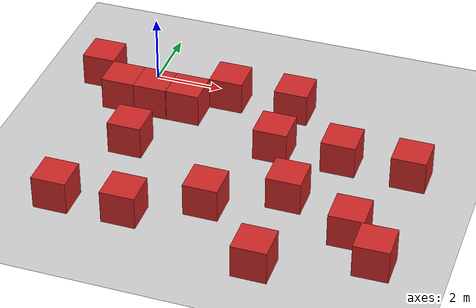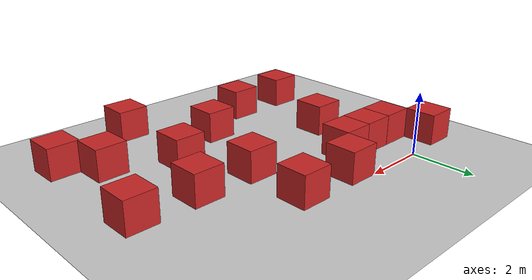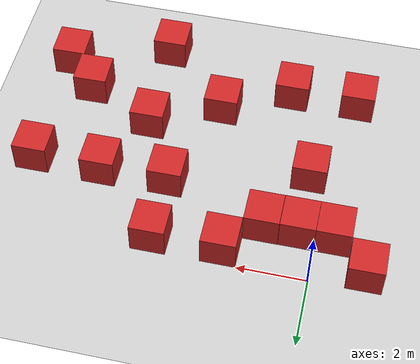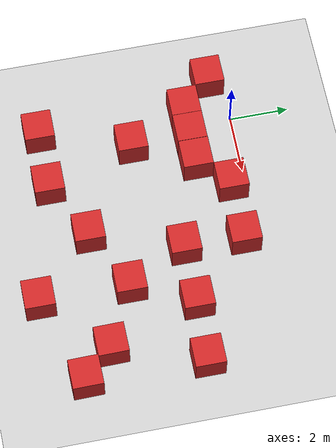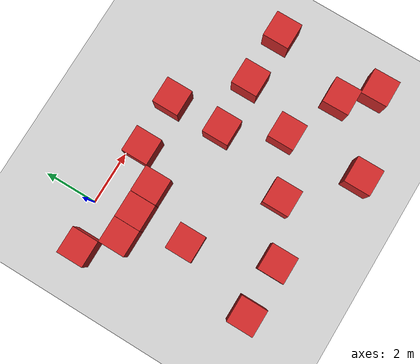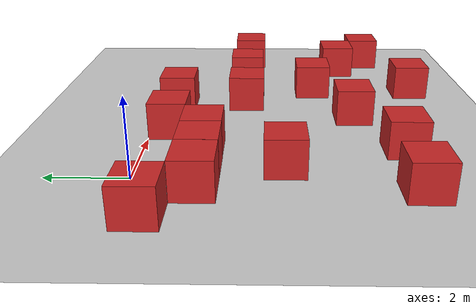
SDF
<sdf version="1.7">
 <world name="default">
  <model name="ground_plane">
   <static>1</static>
   <link name="link">
    <collision name="collision">
     <geometry><plane><normal>0 0 1</normal><size>100 100</size></plane></geometry>
     <surface><friction><ode><mu>100</mu><mu2>50</mu2></ode></friction></surface>
    </collision>
    <visual name="visual">
     <cast_shadows>0</cast_shadows>
     <geometry><plane><normal>0 0 1</normal><size>100 100</size></plane></geometry>
     <material>
      <script><uri>file://media/materials/scripts/gazebo.material</uri><name>Gazebo/Grey</name></script>
     </material>
    </visual>
   </link>
  </model>
  <model name="unit_box_red_0">
   <link name="link">
    <inertial>
     <mass>1</mass>
     <inertia>
      <ixx>0.166667</ixx>
      <ixy>0</ixy>
      <ixz>0</ixz>
      <iyy>0.166667</iyy>
      <iyz>0</iyz>
      <izz>0.166667</izz>
     </inertia>
    </inertial>
    <visual name="visual">
     <geometry><box><size>1 1 1</size></box></geometry>
     <material>
      <script><name>Gazebo/Red</name><uri>file://media/materials/scripts/gazebo.material</uri></script>
      <shader type="pixel"><normal_map>__default__</normal_map></shader>
      <ambient>1 0 0 1</ambient>
      <diffuse>1 0 0 1</diffuse>
      <specular>1 0 0 1</specular>
      <emissive>1 0 0 1</emissive>
     </material>
    </visual>
    <collision name="collision">
     <geometry><box><size>1 1 1</size></box></geometry>
     <surface>
      <friction>
       <ode><mu>1</mu><mu2>1</mu2><fdir1>0 0 0</fdir1><slip1>0</slip1><slip2>0</slip2></ode>
       <torsional>
        <coefficient>1</coefficient>
        <patch_radius>0</patch_radius>
        <surface_radius>0</surface_radius>
        <use_patch_radius>1</use_patch_radius>
        <ode><slip>0</slip></ode>
       </torsional>
      </friction>
      <bounce><restitution_coefficient>0</restitution_coefficient><threshold>1e+06</threshold></bounce>
      <contact>
       <collide_without_contact>0</collide_without_contact>
       <collide_without_contact_bitmask>1</collide_without_contact_bitmask>
       <collide_bitmask>1</collide_bitmask>
       <ode>
        <soft_cfm>0</soft_cfm>
        <soft_erp>0.2</soft_erp>
        <kp>1e+13</kp>
        <kd>1</kd>
        <max_vel>0.01</max_vel>
        <min_depth>0</min_depth>
       </ode>
       <bullet>
        <split_impulse>1</split_impulse>
        <split_impulse_penetration_threshold>-0.01</split_impulse_penetration_threshold>
        <soft_cfm>0</soft_cfm>
        <soft_erp>0.2</soft_erp>
        <kp>1e+13</kp>
        <kd>1</kd>
       </bullet>
      </contact>
     </surface>
    </collision>
   </link>
   <static>0</static>
   <pose>2.51351 -0.508621 0.499995 0 1e-05 0</pose>
  </model>
  <model name="unit_box_red_0_clone_1">
   <link name="link">
    <inertial>
     <mass>1</mass>
     <inertia>
      <ixx>0.166667</ixx>
      <ixy>0</ixy>
      <ixz>0</ixz>
      <iyy>0.166667</iyy>
      <iyz>0</iyz>
      <izz>0.166667</izz>
     </inertia>
    </inertial>
    <visual name="visual">
     <geometry><box><size>1 1 1</size></box></geometry>
     <material>
      <script><name>Gazebo/Red</name><uri>file://media/materials/scripts/gazebo.material</uri></script>
      <shader type="pixel"><normal_map>__default__</normal_map></shader>
      <ambient>1 0 0 1</ambient>
      <diffuse>1 0 0 1</diffuse>
      <specular>1 0 0 1</specular>
      <emissive>1 0 0 1</emissive>
     </material>
    </visual>
    <collision name="collision">
     <geometry><box><size>1 1 1</size></box></geometry>
     <surface>
      <friction>
       <ode><mu>1</mu><mu2>1</mu2><fdir1>0 0 0</fdir1><slip1>0</slip1><slip2>0</slip2></ode>
       <torsional>
        <coefficient>1</coefficient>
        <patch_radius>0</patch_radius>
        <surface_radius>0</surface_radius>
        <use_patch_radius>1</use_patch_radius>
        <ode><slip>0</slip></ode>
       </torsional>
      </friction>
      <bounce><restitution_coefficient>0</restitution_coefficient><threshold>1e+06</threshold></bounce>
      <contact>
       <collide_without_contact>0</collide_without_contact>
       <collide_without_contact_bitmask>1</collide_without_contact_bitmask>
       <collide_bitmask>1</collide_bitmask>
       <ode>
        <soft_cfm>0</soft_cfm>
        <soft_erp>0.2</soft_erp>
        <kp>1e+13</kp>
        <kd>1</kd>
        <max_vel>0.01</max_vel>
        <min_depth>0</min_depth>
       </ode>
       <bullet>
        <split_impulse>1</split_impulse>
        <split_impulse_penetration_threshold>-0.01</split_impulse_penetration_threshold>
        <soft_cfm>0</soft_cfm>
        <soft_erp>0.2</soft_erp>
        <kp>1e+13</kp>
        <kd>1</kd>
       </bullet>
      </contact>
     </surface>
    </collision>
   </link>
   <static>0</static>
   <pose>1.50873 -1.50432 0.499995 0 1e-05 0</pose>
  </model>
  <model name="unit_box_red_0_clone_2">
   <link name="link">
    <inertial>
     <mass>1</mass>
     <inertia>
      <ixx>0.166667</ixx>
      <ixy>0</ixy>
      <ixz>0</ixz>
      <iyy>0.166667</iyy>
      <iyz>0</iyz>
      <izz>0.166667</izz>
     </inertia>
    </inertial>
    <visual name="visual">
     <geometry><box><size>1 1 1</size></box></geometry>
     <material>
      <script><name>Gazebo/Red</name><uri>file://media/materials/scripts/gazebo.material</uri></script>
      <shader type="pixel"><normal_map>__default__</normal_map></shader>
      <ambient>1 0 0 1</ambient>
      <diffuse>1 0 0 1</diffuse>
      <specular>1 0 0 1</specular>
      <emissive>1 0 0 1</emissive>
     </material>
    </visual>
    <collision name="collision">
     <geometry><box><size>1 1 1</size></box></geometry>
     <surface>
      <friction>
       <ode><mu>1</mu><mu2>1</mu2><fdir1>0 0 0</fdir1><slip1>0</slip1><slip2>0</slip2></ode>
       <torsional>
        <coefficient>1</coefficient>
        <patch_radius>0</patch_radius>
        <surface_radius>0</surface_radius>
        <use_patch_radius>1</use_patch_radius>
        <ode><slip>0</slip></ode>
       </torsional>
      </friction>
      <bounce><restitution_coefficient>0</restitution_coefficient><threshold>1e+06</threshold></bounce>
      <contact>
       <collide_without_contact>0</collide_without_contact>
       <collide_without_contact_bitmask>1</collide_without_contact_bitmask>
       <collide_bitmask>1</collide_bitmask>
       <ode>
        <soft_cfm>0</soft_cfm>
        <soft_erp>0.2</soft_erp>
        <kp>1e+13</kp>
        <kd>1</kd>
        <max_vel>0.01</max_vel>
        <min_depth>0</min_depth>
       </ode>
       <bullet>
        <split_impulse>1</split_impulse>
        <split_impulse_penetration_threshold>-0.01</split_impulse_penetration_threshold>
        <soft_cfm>0</soft_cfm>
        <soft_erp>0.2</soft_erp>
        <kp>1e+13</kp>
        <kd>1</kd>
       </bullet>
      </contact>
     </surface>
    </collision>
   </link>
   <static>0</static>
   <pose>0.502623 -1.50954 0.499995 0 1e-05 0</pose>
  </model>
  <model name="unit_box_red_0_clone_3">
   <link name="link">
    <inertial>
     <mass>1</mass>
     <inertia>
      <ixx>0.166667</ixx>
      <ixy>0</ixy>
      <ixz>0</ixz>
      <iyy>0.166667</iyy>
      <iyz>0</iyz>
      <izz>0.166667</izz>
     </inertia>
    </inertial>
    <visual name="visual">
     <geometry><box><size>1 1 1</size></box></geometry>
     <material>
      <script><name>Gazebo/Red</name><uri>file://media/materials/scripts/gazebo.material</uri></script>
      <shader type="pixel"><normal_map>__default__</normal_map></shader>
      <ambient>1 0 0 1</ambient>
      <diffuse>1 0 0 1</diffuse>
      <specular>1 0 0 1</specular>
      <emissive>1 0 0 1</emissive>
     </material>
    </visual>
    <collision name="collision">
     <geometry><box><size>1 1 1</size></box></geometry>
     <surface>
      <friction>
       <ode><mu>1</mu><mu2>1</mu2><fdir1>0 0 0</fdir1><slip1>0</slip1><slip2>0</slip2></ode>
       <torsional>
        <coefficient>1</coefficient>
        <patch_radius>0</patch_radius>
        <surface_radius>0</surface_radius>
        <use_patch_radius>1</use_patch_radius>
        <ode><slip>0</slip></ode>
       </torsional>
      </friction>
      <bounce><restitution_coefficient>0</restitution_coefficient><threshold>1e+06</threshold></bounce>
      <contact>
       <collide_without_contact>0</collide_without_contact>
       <collide_without_contact_bitmask>1</collide_without_contact_bitmask>
       <collide_bitmask>1</collide_bitmask>
       <ode>
        <soft_cfm>0</soft_cfm>
        <soft_erp>0.2</soft_erp>
        <kp>1e+13</kp>
        <kd>1</kd>
        <max_vel>0.01</max_vel>
        <min_depth>0</min_depth>
       </ode>
       <bullet>
        <split_impulse>1</split_impulse>
        <split_impulse_penetration_threshold>-0.01</split_impulse_penetration_threshold>
        <soft_cfm>0</soft_cfm>
        <soft_erp>0.2</soft_erp>
        <kp>1e+13</kp>
        <kd>1</kd>
       </bullet>
      </contact>
     </surface>
    </collision>
   </link>
   <static>0</static>
   <pose>-1.50793 -0.508747 0.499995 -0 1e-05 0.000642</pose>
  </model>
  <model name="unit_box_red_0_clone_13">
   <link name="link">
    <inertial>
     <mass>1</mass>
     <inertia>
      <ixx>0.166667</ixx>
      <ixy>0</ixy>
      <ixz>0</ixz>
      <iyy>0.166667</iyy>
      <iyz>0</iyz>
      <izz>0.166667</izz>
     </inertia>
    </inertial>
    <visual name="visual">
     <geometry><box><size>1 1 1</size></box></geometry>
     <material>
      <script><name>Gazebo/Red</name><uri>file://media/materials/scripts/gazebo.material</uri></script>
      <shader type="pixel"><normal_map>__default__</normal_map></shader>
      <ambient>1 0 0 1</ambient>
      <diffuse>1 0 0 1</diffuse>
      <specular>1 0 0 1</specular>
      <emissive>1 0 0 1</emissive>
     </material>
    </visual>
    <collision name="collision">
     <geometry><box><size>1 1 1</size></box></geometry>
     <surface>
      <friction>
       <ode><mu>1</mu><mu2>1</mu2><fdir1>0 0 0</fdir1><slip1>0</slip1><slip2>0</slip2></ode>
       <torsional>
        <coefficient>1</coefficient>
        <patch_radius>0</patch_radius>
        <surface_radius>0</surface_radius>
        <use_patch_radius>1</use_patch_radius>
        <ode><slip>0</slip></ode>
       </torsional>
      </friction>
      <bounce><restitution_coefficient>0</restitution_coefficient><threshold>1e+06</threshold></bounce>
      <contact>
       <collide_without_contact>0</collide_without_contact>
       <collide_without_contact_bitmask>1</collide_without_contact_bitmask>
       <collide_bitmask>1</collide_bitmask>
       <ode>
        <soft_cfm>0</soft_cfm>
        <soft_erp>0.2</soft_erp>
        <kp>1e+13</kp>
        <kd>1</kd>
        <max_vel>0.01</max_vel>
        <min_depth>0</min_depth>
       </ode>
       <bullet>
        <split_impulse>1</split_impulse>
        <split_impulse_penetration_threshold>-0.01</split_impulse_penetration_threshold>
        <soft_cfm>0</soft_cfm>
        <soft_erp>0.2</soft_erp>
        <kp>1e+13</kp>
        <kd>1</kd>
       </bullet>
      </contact>
     </surface>
    </collision>
   </link>
   <static>0</static>
   <pose>0.488657 -3.51166 0.499995 0 1e-05 0</pose>
  </model>
  <model name="unit_box_red_0_clone_17">
   <link name="link">
    <inertial>
     <mass>1</mass>
     <inertia>
      <ixx>0.166667</ixx>
      <ixy>0</ixy>
      <ixz>0</ixz>
      <iyy>0.166667</iyy>
      <iyz>0</iyz>
      <izz>0.166667</izz>
     </inertia>
    </inertial>
    <visual name="visual">
     <geometry><box><size>1 1 1</size></box></geometry>
     <material>
      <script><name>Gazebo/Red</name><uri>file://media/materials/scripts/gazebo.material</uri></script>
      <shader type="pixel"><normal_map>__default__</normal_map></shader>
      <ambient>1 0 0 1</ambient>
      <diffuse>1 0 0 1</diffuse>
      <specular>1 0 0 1</specular>
      <emissive>1 0 0 1</emissive>
     </material>
    </visual>
    <collision name="collision">
     <geometry><box><size>1 1 1</size></box></geometry>
     <surface>
      <friction>
       <ode><mu>1</mu><mu2>1</mu2><fdir1>0 0 0</fdir1><slip1>0</slip1><slip2>0</slip2></ode>
       <torsional>
        <coefficient>1</coefficient>
        <patch_radius>0</patch_radius>
        <surface_radius>0</surface_radius>
        <use_patch_radius>1</use_patch_radius>
        <ode><slip>0</slip></ode>
       </torsional>
      </friction>
      <bounce><restitution_coefficient>0</restitution_coefficient><threshold>1e+06</threshold></bounce>
      <contact>
       <collide_without_contact>0</collide_without_contact>
       <collide_without_contact_bitmask>1</collide_without_contact_bitmask>
       <collide_bitmask>1</collide_bitmask>
       <ode>
        <soft_cfm>0</soft_cfm>
        <soft_erp>0.2</soft_erp>
        <kp>1e+13</kp>
        <kd>1</kd>
        <max_vel>0.01</max_vel>
        <min_depth>0</min_depth>
       </ode>
       <bullet>
        <split_impulse>1</split_impulse>
        <split_impulse_penetration_threshold>-0.01</split_impulse_penetration_threshold>
        <soft_cfm>0</soft_cfm>
        <soft_erp>0.2</soft_erp>
        <kp>1e+13</kp>
        <kd>1</kd>
       </bullet>
      </contact>
     </surface>
    </collision>
   </link>
   <static>0</static>
   <pose>4.50134 -0.502145 0.499995 0 1e-05 0</pose>
  </model>
  <model name="unit_box_red_0_clone_21">
   <link name="link">
    <inertial>
     <mass>1</mass>
     <inertia>
      <ixx>0.166667</ixx>
      <ixy>0</ixy>
      <ixz>0</ixz>
      <iyy>0.166667</iyy>
      <iyz>0</iyz>
      <izz>0.166667</izz>
     </inertia>
    </inertial>
    <visual name="visual">
     <geometry><box><size>1 1 1</size></box></geometry>
     <material>
      <script><name>Gazebo/Red</name><uri>file://media/materials/scripts/gazebo.material</uri></script>
      <shader type="pixel"><normal_map>__default__</normal_map></shader>
      <ambient>1 0 0 1</ambient>
      <diffuse>1 0 0 1</diffuse>
      <specular>1 0 0 1</specular>
      <emissive>1 0 0 1</emissive>
     </material>
    </visual>
    <collision name="collision">
     <geometry><box><size>1 1 1</size></box></geometry>
     <surface>
      <friction>
       <ode><mu>1</mu><mu2>1</mu2><fdir1>0 0 0</fdir1><slip1>0</slip1><slip2>0</slip2></ode>
       <torsional>
        <coefficient>1</coefficient>
        <patch_radius>0</patch_radius>
        <surface_radius>0</surface_radius>
        <use_patch_radius>1</use_patch_radius>
        <ode><slip>0</slip></ode>
       </torsional>
      </friction>
      <bounce><restitution_coefficient>0</restitution_coefficient><threshold>1e+06</threshold></bounce>
      <contact>
       <collide_without_contact>0</collide_without_contact>
       <collide_without_contact_bitmask>1</collide_without_contact_bitmask>
       <collide_bitmask>1</collide_bitmask>
       <ode>
        <soft_cfm>0</soft_cfm>
        <soft_erp>0.2</soft_erp>
        <kp>1e+13</kp>
        <kd>1</kd>
        <max_vel>0.01</max_vel>
        <min_depth>0</min_depth>
       </ode>
       <bullet>
        <split_impulse>1</split_impulse>
        <split_impulse_penetration_threshold>-0.01</split_impulse_penetration_threshold>
        <soft_cfm>0</soft_cfm>
        <soft_erp>0.2</soft_erp>
        <kp>1e+13</kp>
        <kd>1</kd>
       </bullet>
      </contact>
     </surface>
    </collision>
   </link>
   <static>0</static>
   <pose>4.50061 -2.50401 0.499995 0 1e-05 0</pose>
  </model>
  <model name="unit_box_red_0_clone_16_clone_3">
   <link name="link">
    <inertial>
     <mass>1</mass>
     <inertia>
      <ixx>0.166667</ixx>
      <ixy>0</ixy>
      <ixz>0</ixz>
      <iyy>0.166667</iyy>
      <iyz>0</iyz>
      <izz>0.166667</izz>
     </inertia>
    </inertial>
    <visual name="visual">
     <geometry><box><size>1 1 1</size></box></geometry>
     <material>
      <script><name>Gazebo/Red</name><uri>file://media/materials/scripts/gazebo.material</uri></script>
      <shader type="pixel"><normal_map>__default__</normal_map></shader>
      <ambient>1 0 0 1</ambient>
      <diffuse>1 0 0 1</diffuse>
      <specular>1 0 0 1</specular>
      <emissive>1 0 0 1</emissive>
     </material>
    </visual>
    <collision name="collision">
     <geometry><box><size>1 1 1</size></box></geometry>
     <surface>
      <friction>
       <ode><mu>1</mu><mu2>1</mu2><fdir1>0 0 0</fdir1><slip1>0</slip1><slip2>0</slip2></ode>
       <torsional>
        <coefficient>1</coefficient>
        <patch_radius>0</patch_radius>
        <surface_radius>0</surface_radius>
        <use_patch_radius>1</use_patch_radius>
        <ode><slip>0</slip></ode>
       </torsional>
      </friction>
      <bounce><restitution_coefficient>0</restitution_coefficient><threshold>1e+06</threshold></bounce>
      <contact>
       <collide_without_contact>0</collide_without_contact>
       <collide_without_contact_bitmask>1</collide_without_contact_bitmask>
       <collide_bitmask>1</collide_bitmask>
       <ode>
        <soft_cfm>0</soft_cfm>
        <soft_erp>0.2</soft_erp>
        <kp>1e+13</kp>
        <kd>1</kd>
        <max_vel>0.01</max_vel>
        <min_depth>0</min_depth>
       </ode>
       <bullet>
        <split_impulse>1</split_impulse>
        <split_impulse_penetration_threshold>-0.01</split_impulse_penetration_threshold>
        <soft_cfm>0</soft_cfm>
        <soft_erp>0.2</soft_erp>
        <kp>1e+13</kp>
        <kd>1</kd>
       </bullet>
      </contact>
     </surface>
    </collision>
   </link>
   <static>0</static>
   <pose>3.48347 -5.50132 0.499995 0 1e-05 0</pose>
  </model>
  <model name="unit_box_red_0_clone_16_clone_7">
   <link name="link">
    <inertial>
     <mass>1</mass>
     <inertia>
      <ixx>0.166667</ixx>
      <ixy>0</ixy>
      <ixz>0</ixz>
      <iyy>0.166667</iyy>
      <iyz>0</iyz>
      <izz>0.166667</izz>
     </inertia>
    </inertial>
    <visual name="visual">
     <geometry><box><size>1 1 1</size></box></geometry>
     <material>
      <script><name>Gazebo/Red</name><uri>file://media/materials/scripts/gazebo.material</uri></script>
      <shader type="pixel"><normal_map>__default__</normal_map></shader>
      <ambient>1 0 0 1</ambient>
      <diffuse>1 0 0 1</diffuse>
      <specular>1 0 0 1</specular>
      <emissive>1 0 0 1</emissive>
     </material>
    </visual>
    <collision name="collision">
     <geometry><box><size>1 1 1</size></box></geometry>
     <surface>
      <friction>
       <ode><mu>1</mu><mu2>1</mu2><fdir1>0 0 0</fdir1><slip1>0</slip1><slip2>0</slip2></ode>
       <torsional>
        <coefficient>1</coefficient>
        <patch_radius>0</patch_radius>
        <surface_radius>0</surface_radius>
        <use_patch_radius>1</use_patch_radius>
        <ode><slip>0</slip></ode>
       </torsional>
      </friction>
      <bounce><restitution_coefficient>0</restitution_coefficient><threshold>1e+06</threshold></bounce>
      <contact>
       <collide_without_contact>0</collide_without_contact>
       <collide_without_contact_bitmask>1</collide_without_contact_bitmask>
       <collide_bitmask>1</collide_bitmask>
       <ode>
        <soft_cfm>0</soft_cfm>
        <soft_erp>0.2</soft_erp>
        <kp>1e+13</kp>
        <kd>1</kd>
        <max_vel>0.01</max_vel>
        <min_depth>0</min_depth>
       </ode>
       <bullet>
        <split_impulse>1</split_impulse>
        <split_impulse_penetration_threshold>-0.01</split_impulse_penetration_threshold>
        <soft_cfm>0</soft_cfm>
        <soft_erp>0.2</soft_erp>
        <kp>1e+13</kp>
        <kd>1</kd>
       </bullet>
      </contact>
     </surface>
    </collision>
   </link>
   <static>0</static>
   <pose>8.51195 -2.53935 0.499995 0 1e-05 0</pose>
  </model>
  <model name="unit_box_red_0_clone_16_clone_8">
   <link name="link">
    <inertial>
     <mass>1</mass>
     <inertia>
      <ixx>0.166667</ixx>
      <ixy>0</ixy>
      <ixz>0</ixz>
      <iyy>0.166667</iyy>
      <iyz>0</iyz>
      <izz>0.166667</izz>
     </inertia>
    </inertial>
    <visual name="visual">
     <geometry><box><size>1 1 1</size></box></geometry>
     <material>
      <script><name>Gazebo/Red</name><uri>file://media/materials/scripts/gazebo.material</uri></script>
      <shader type="pixel"><normal_map>__default__</normal_map></shader>
      <ambient>1 0 0 1</ambient>
      <diffuse>1 0 0 1</diffuse>
      <specular>1 0 0 1</specular>
      <emissive>1 0 0 1</emissive>
     </material>
    </visual>
    <collision name="collision">
     <geometry><box><size>1 1 1</size></box></geometry>
     <surface>
      <friction>
       <ode><mu>1</mu><mu2>1</mu2><fdir1>0 0 0</fdir1><slip1>0</slip1><slip2>0</slip2></ode>
       <torsional>
        <coefficient>1</coefficient>
        <patch_radius>0</patch_radius>
        <surface_radius>0</surface_radius>
        <use_patch_radius>1</use_patch_radius>
        <ode><slip>0</slip></ode>
       </torsional>
      </friction>
      <bounce><restitution_coefficient>0</restitution_coefficient><threshold>1e+06</threshold></bounce>
      <contact>
       <collide_without_contact>0</collide_without_contact>
       <collide_without_contact_bitmask>1</collide_without_contact_bitmask>
       <collide_bitmask>1</collide_bitmask>
       <ode>
        <soft_cfm>0</soft_cfm>
        <soft_erp>0.2</soft_erp>
        <kp>1e+13</kp>
        <kd>1</kd>
        <max_vel>0.01</max_vel>
        <min_depth>0</min_depth>
       </ode>
       <bullet>
        <split_impulse>1</split_impulse>
        <split_impulse_penetration_threshold>-0.01</split_impulse_penetration_threshold>
        <soft_cfm>0</soft_cfm>
        <soft_erp>0.2</soft_erp>
        <kp>1e+13</kp>
        <kd>1</kd>
       </bullet>
      </contact>
     </surface>
    </collision>
   </link>
   <static>0</static>
   <pose>6.47989 -2.47047 0.499995 0 1e-05 0</pose>
  </model>
  <model name="unit_box_red_0_clone_16_clone_9">
   <link name="link">
    <inertial>
     <mass>1</mass>
     <inertia>
      <ixx>0.166667</ixx>
      <ixy>0</ixy>
      <ixz>0</ixz>
      <iyy>0.166667</iyy>
      <iyz>0</iyz>
      <izz>0.166667</izz>
     </inertia>
    </inertial>
    <visual name="visual">
     <geometry><box><size>1 1 1</size></box></geometry>
     <material>
      <script><name>Gazebo/Red</name><uri>file://media/materials/scripts/gazebo.material</uri></script>
      <shader type="pixel"><normal_map>__default__</normal_map></shader>
      <ambient>1 0 0 1</ambient>
      <diffuse>1 0 0 1</diffuse>
      <specular>1 0 0 1</specular>
      <emissive>1 0 0 1</emissive>
     </material>
    </visual>
    <collision name="collision">
     <geometry><box><size>1 1 1</size></box></geometry>
     <surface>
      <friction>
       <ode><mu>1</mu><mu2>1</mu2><fdir1>0 0 0</fdir1><slip1>0</slip1><slip2>0</slip2></ode>
       <torsional>
        <coefficient>1</coefficient>
        <patch_radius>0</patch_radius>
        <surface_radius>0</surface_radius>
        <use_patch_radius>1</use_patch_radius>
        <ode><slip>0</slip></ode>
       </torsional>
      </friction>
      <bounce><restitution_coefficient>0</restitution_coefficient><threshold>1e+06</threshold></bounce>
      <contact>
       <collide_without_contact>0</collide_without_contact>
       <collide_without_contact_bitmask>1</collide_without_contact_bitmask>
       <collide_bitmask>1</collide_bitmask>
       <ode>
        <soft_cfm>0</soft_cfm>
        <soft_erp>0.2</soft_erp>
        <kp>1e+13</kp>
        <kd>1</kd>
        <max_vel>0.01</max_vel>
        <min_depth>0</min_depth>
       </ode>
       <bullet>
        <split_impulse>1</split_impulse>
        <split_impulse_penetration_threshold>-0.01</split_impulse_penetration_threshold>
        <soft_cfm>0</soft_cfm>
        <soft_erp>0.2</soft_erp>
        <kp>1e+13</kp>
        <kd>1</kd>
       </bullet>
      </contact>
     </surface>
    </collision>
   </link>
   <static>0</static>
   <pose>7.54107 -5.48973 0.499995 -1e-05 -0 0.012964</pose>
  </model>
  <model name="unit_box_red_0_clone_16_clone_10">
   <link name="link">
    <inertial>
     <mass>1</mass>
     <inertia>
      <ixx>0.166667</ixx>
      <ixy>0</ixy>
      <ixz>0</ixz>
      <iyy>0.166667</iyy>
      <iyz>0</iyz>
      <izz>0.166667</izz>
     </inertia>
    </inertial>
    <visual name="visual">
     <geometry><box><size>1 1 1</size></box></geometry>
     <material>
      <script><name>Gazebo/Red</name><uri>file://media/materials/scripts/gazebo.material</uri></script>
      <shader type="pixel"><normal_map>__default__</normal_map></shader>
      <ambient>1 0 0 1</ambient>
      <diffuse>1 0 0 1</diffuse>
      <specular>1 0 0 1</specular>
      <emissive>1 0 0 1</emissive>
     </material>
    </visual>
    <collision name="collision">
     <geometry><box><size>1 1 1</size></box></geometry>
     <surface>
      <friction>
       <ode><mu>1</mu><mu2>1</mu2><fdir1>0 0 0</fdir1><slip1>0</slip1><slip2>0</slip2></ode>
       <torsional>
        <coefficient>1</coefficient>
        <patch_radius>0</patch_radius>
        <surface_radius>0</surface_radius>
        <use_patch_radius>1</use_patch_radius>
        <ode><slip>0</slip></ode>
       </torsional>
      </friction>
      <bounce><restitution_coefficient>0</restitution_coefficient><threshold>1e+06</threshold></bounce>
      <contact>
       <collide_without_contact>0</collide_without_contact>
       <collide_without_contact_bitmask>1</collide_without_contact_bitmask>
       <collide_bitmask>1</collide_bitmask>
       <ode>
        <soft_cfm>0</soft_cfm>
        <soft_erp>0.2</soft_erp>
        <kp>1e+13</kp>
        <kd>1</kd>
        <max_vel>0.01</max_vel>
        <min_depth>0</min_depth>
       </ode>
       <bullet>
        <split_impulse>1</split_impulse>
        <split_impulse_penetration_threshold>-0.01</split_impulse_penetration_threshold>
        <soft_cfm>0</soft_cfm>
        <soft_erp>0.2</soft_erp>
        <kp>1e+13</kp>
        <kd>1</kd>
       </bullet>
      </contact>
     </surface>
    </collision>
   </link>
   <static>0</static>
   <pose>5.51553 -4.50252 0.499995 0 1e-05 0</pose>
  </model>
  <model name="unit_box_red_0_clone_16_clone_11">
   <link name="link">
    <inertial>
     <mass>1</mass>
     <inertia>
      <ixx>0.166667</ixx>
      <ixy>0</ixy>
      <ixz>0</ixz>
      <iyy>0.166667</iyy>
      <iyz>0</iyz>
      <izz>0.166667</izz>
     </inertia>
    </inertial>
    <visual name="visual">
     <geometry><box><size>1 1 1</size></box></geometry>
     <material>
      <script><name>Gazebo/Red</name><uri>file://media/materials/scripts/gazebo.material</uri></script>
      <shader type="pixel"><normal_map>__default__</normal_map></shader>
      <ambient>1 0 0 1</ambient>
      <diffuse>1 0 0 1</diffuse>
      <specular>1 0 0 1</specular>
      <emissive>1 0 0 1</emissive>
     </material>
    </visual>
    <collision name="collision">
     <geometry><box><size>1 1 1</size></box></geometry>
     <surface>
      <friction>
       <ode><mu>1</mu><mu2>1</mu2><fdir1>0 0 0</fdir1><slip1>0</slip1><slip2>0</slip2></ode>
       <torsional>
        <coefficient>1</coefficient>
        <patch_radius>0</patch_radius>
        <surface_radius>0</surface_radius>
        <use_patch_radius>1</use_patch_radius>
        <ode><slip>0</slip></ode>
       </torsional>
      </friction>
      <bounce><restitution_coefficient>0</restitution_coefficient><threshold>1e+06</threshold></bounce>
      <contact>
       <collide_without_contact>0</collide_without_contact>
       <collide_without_contact_bitmask>1</collide_without_contact_bitmask>
       <collide_bitmask>1</collide_bitmask>
       <ode>
        <soft_cfm>0</soft_cfm>
        <soft_erp>0.2</soft_erp>
        <kp>1e+13</kp>
        <kd>1</kd>
        <max_vel>0.01</max_vel>
        <min_depth>0</min_depth>
       </ode>
       <bullet>
        <split_impulse>1</split_impulse>
        <split_impulse_penetration_threshold>-0.01</split_impulse_penetration_threshold>
        <soft_cfm>0</soft_cfm>
        <soft_erp>0.2</soft_erp>
        <kp>1e+13</kp>
        <kd>1</kd>
       </bullet>
      </contact>
     </surface>
    </collision>
   </link>
   <static>0</static>
   <pose>-0.511751 -6.50013 0.499995 0 1e-05 0</pose>
  </model>
  <model name="unit_box_red_0_clone_16_clone_18">
   <link name="link">
    <inertial>
     <mass>1</mass>
     <inertia>
      <ixx>0.166667</ixx>
      <ixy>0</ixy>
      <ixz>0</ixz>
      <iyy>0.166667</iyy>
      <iyz>0</iyz>
      <izz>0.166667</izz>
     </inertia>
    </inertial>
    <visual name="visual">
     <geometry><box><size>1 1 1</size></box></geometry>
     <material>
      <script><name>Gazebo/Red</name><uri>file://media/materials/scripts/gazebo.material</uri></script>
      <shader type="pixel"><normal_map>__default__</normal_map></shader>
      <ambient>1 0 0 1</ambient>
      <diffuse>1 0 0 1</diffuse>
      <specular>1 0 0 1</specular>
      <emissive>1 0 0 1</emissive>
     </material>
    </visual>
    <collision name="collision">
     <geometry><box><size>1 1 1</size></box></geometry>
     <surface>
      <friction>
       <ode><mu>1</mu><mu2>1</mu2><fdir1>0 0 0</fdir1><slip1>0</slip1><slip2>0</slip2></ode>
       <torsional>
        <coefficient>1</coefficient>
        <patch_radius>0</patch_radius>
        <surface_radius>0</surface_radius>
        <use_patch_radius>1</use_patch_radius>
        <ode><slip>0</slip></ode>
       </torsional>
      </friction>
      <bounce><restitution_coefficient>0</restitution_coefficient><threshold>1e+06</threshold></bounce>
      <contact>
       <collide_without_contact>0</collide_without_contact>
       <collide_without_contact_bitmask>1</collide_without_contact_bitmask>
       <collide_bitmask>1</collide_bitmask>
       <ode>
        <soft_cfm>0</soft_cfm>
        <soft_erp>0.2</soft_erp>
        <kp>1e+13</kp>
        <kd>1</kd>
        <max_vel>0.01</max_vel>
        <min_depth>0</min_depth>
       </ode>
       <bullet>
        <split_impulse>1</split_impulse>
        <split_impulse_penetration_threshold>-0.01</split_impulse_penetration_threshold>
        <soft_cfm>0</soft_cfm>
        <soft_erp>0.2</soft_erp>
        <kp>1e+13</kp>
        <kd>1</kd>
       </bullet>
      </contact>
     </surface>
    </collision>
   </link>
   <static>0</static>
   <pose>1.48586 -6.50013 0.499995 0 1e-05 0</pose>
  </model>
  <model name="unit_box_red_0_clone_16_clone_24">
   <link name="link">
    <inertial>
     <mass>1</mass>
     <inertia>
      <ixx>0.166667</ixx>
      <ixy>0</ixy>
      <ixz>0</ixz>
      <iyy>0.166667</iyy>
      <iyz>0</iyz>
      <izz>0.166667</izz>
     </inertia>
    </inertial>
    <visual name="visual">
     <geometry><box><size>1 1 1</size></box></geometry>
     <material>
      <script><name>Gazebo/Red</name><uri>file://media/materials/scripts/gazebo.material</uri></script>
      <shader type="pixel"><normal_map>__default__</normal_map></shader>
      <ambient>1 0 0 1</ambient>
      <diffuse>1 0 0 1</diffuse>
      <specular>1 0 0 1</specular>
      <emissive>1 0 0 1</emissive>
     </material>
    </visual>
    <collision name="collision">
     <geometry><box><size>1 1 1</size></box></geometry>
     <surface>
      <friction>
       <ode><mu>1</mu><mu2>1</mu2><fdir1>0 0 0</fdir1><slip1>0</slip1><slip2>0</slip2></ode>
       <torsional>
        <coefficient>1</coefficient>
        <patch_radius>0</patch_radius>
        <surface_radius>0</surface_radius>
        <use_patch_radius>1</use_patch_radius>
        <ode><slip>0</slip></ode>
       </torsional>
      </friction>
      <bounce><restitution_coefficient>0</restitution_coefficient><threshold>1e+06</threshold></bounce>
      <contact>
       <collide_without_contact>0</collide_without_contact>
       <collide_without_contact_bitmask>1</collide_without_contact_bitmask>
       <collide_bitmask>1</collide_bitmask>
       <ode>
        <soft_cfm>0</soft_cfm>
        <soft_erp>0.2</soft_erp>
        <kp>1e+13</kp>
        <kd>1</kd>
        <max_vel>0.01</max_vel>
        <min_depth>0</min_depth>
       </ode>
       <bullet>
        <split_impulse>1</split_impulse>
        <split_impulse_penetration_threshold>-0.01</split_impulse_penetration_threshold>
        <soft_cfm>0</soft_cfm>
        <soft_erp>0.2</soft_erp>
        <kp>1e+13</kp>
        <kd>1</kd>
       </bullet>
      </contact>
     </surface>
    </collision>
   </link>
   <static>0</static>
   <pose>8.48401 -6.47727 0.499995 -1e-05 0 0.014014</pose>
  </model>
  <model name="unit_box_red_0_clone_16_clone_26">
   <link name="link">
    <inertial>
     <mass>1</mass>
     <inertia>
      <ixx>0.166667</ixx>
      <ixy>0</ixy>
      <ixz>0</ixz>
      <iyy>0.166667</iyy>
      <iyz>0</iyz>
      <izz>0.166667</izz>
     </inertia>
    </inertial>
    <visual name="visual">
     <geometry><box><size>1 1 1</size></box></geometry>
     <material>
      <script><name>Gazebo/Red</name><uri>file://media/materials/scripts/gazebo.material</uri></script>
      <shader type="pixel"><normal_map>__default__</normal_map></shader>
      <ambient>1 0 0 1</ambient>
      <diffuse>1 0 0 1</diffuse>
      <specular>1 0 0 1</specular>
      <emissive>1 0 0 1</emissive>
     </material>
    </visual>
    <collision name="collision">
     <geometry><box><size>1 1 1</size></box></geometry>
     <surface>
      <friction>
       <ode><mu>1</mu><mu2>1</mu2><fdir1>0 0 0</fdir1><slip1>0</slip1><slip2>0</slip2></ode>
       <torsional>
        <coefficient>1</coefficient>
        <patch_radius>0</patch_radius>
        <surface_radius>0</surface_radius>
        <use_patch_radius>1</use_patch_radius>
        <ode><slip>0</slip></ode>
       </torsional>
      </friction>
      <bounce><restitution_coefficient>0</restitution_coefficient><threshold>1e+06</threshold></bounce>
      <contact>
       <collide_without_contact>0</collide_without_contact>
       <collide_without_contact_bitmask>1</collide_without_contact_bitmask>
       <collide_bitmask>1</collide_bitmask>
       <ode>
        <soft_cfm>0</soft_cfm>
        <soft_erp>0.2</soft_erp>
        <kp>1e+13</kp>
        <kd>1</kd>
        <max_vel>0.01</max_vel>
        <min_depth>0</min_depth>
       </ode>
       <bullet>
        <split_impulse>1</split_impulse>
        <split_impulse_penetration_threshold>-0.01</split_impulse_penetration_threshold>
        <soft_cfm>0</soft_cfm>
        <soft_erp>0.2</soft_erp>
        <kp>1e+13</kp>
        <kd>1</kd>
       </bullet>
      </contact>
     </surface>
    </collision>
   </link>
   <static>0</static>
   <pose>5.51553 -7.49894 0.499995 0 1e-05 0</pose>
  </model>
  <model name="unit_box_red_0_clone_clone_0">
   <link name="link">
    <inertial>
     <mass>1</mass>
     <inertia>
      <ixx>0.166667</ixx>
      <ixy>0</ixy>
      <ixz>0</ixz>
      <iyy>0.166667</iyy>
      <iyz>0</iyz>
      <izz>0.166667</izz>
     </inertia>
    </inertial>
    <visual name="visual">
     <geometry><box><size>1 1 1</size></box></geometry>
     <material>
      <script><name>Gazebo/Red</name><uri>file://media/materials/scripts/gazebo.material</uri></script>
      <shader type="pixel"><normal_map>__default__</normal_map></shader>
      <ambient>1 0 0 1</ambient>
      <diffuse>1 0 0 1</diffuse>
      <specular>1 0 0 1</specular>
      <emissive>1 0 0 1</emissive>
     </material>
    </visual>
    <collision name="collision">
     <geometry><box><size>1 1 1</size></box></geometry>
     <surface>
      <friction>
       <ode><mu>1</mu><mu2>1</mu2><fdir1>0 0 0</fdir1><slip1>0</slip1><slip2>0</slip2></ode>
       <torsional>
        <coefficient>1</coefficient>
        <patch_radius>0</patch_radius>
        <surface_radius>0</surface_radius>
        <use_patch_radius>1</use_patch_radius>
        <ode><slip>0</slip></ode>
       </torsional>
      </friction>
      <bounce><restitution_coefficient>0</restitution_coefficient><threshold>1e+06</threshold></bounce>
      <contact>
       <collide_without_contact>0</collide_without_contact>
       <collide_without_contact_bitmask>1</collide_without_contact_bitmask>
       <collide_bitmask>1</collide_bitmask>
       <ode>
        <soft_cfm>0</soft_cfm>
        <soft_erp>0.2</soft_erp>
        <kp>1e+13</kp>
        <kd>1</kd>
        <max_vel>0.01</max_vel>
        <min_depth>0</min_depth>
       </ode>
       <bullet>
        <split_impulse>1</split_impulse>
        <split_impulse_penetration_threshold>-0.01</split_impulse_penetration_threshold>
        <soft_cfm>0</soft_cfm>
        <soft_erp>0.2</soft_erp>
        <kp>1e+13</kp>
        <kd>1</kd>
       </bullet>
      </contact>
     </surface>
    </collision>
   </link>
   <static>0</static>
   <pose>-0.498476 -1.5089 0.5 0 -0 0</pose>
  </model>
 </world>
</sdf>
